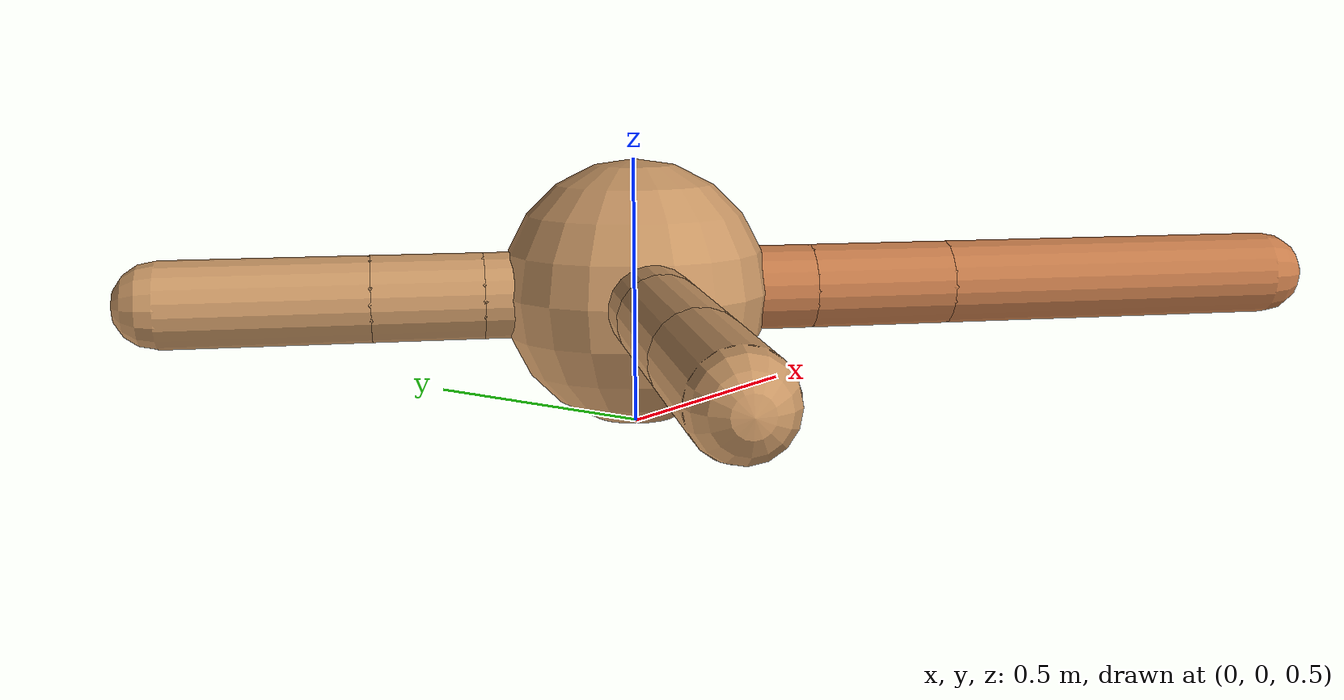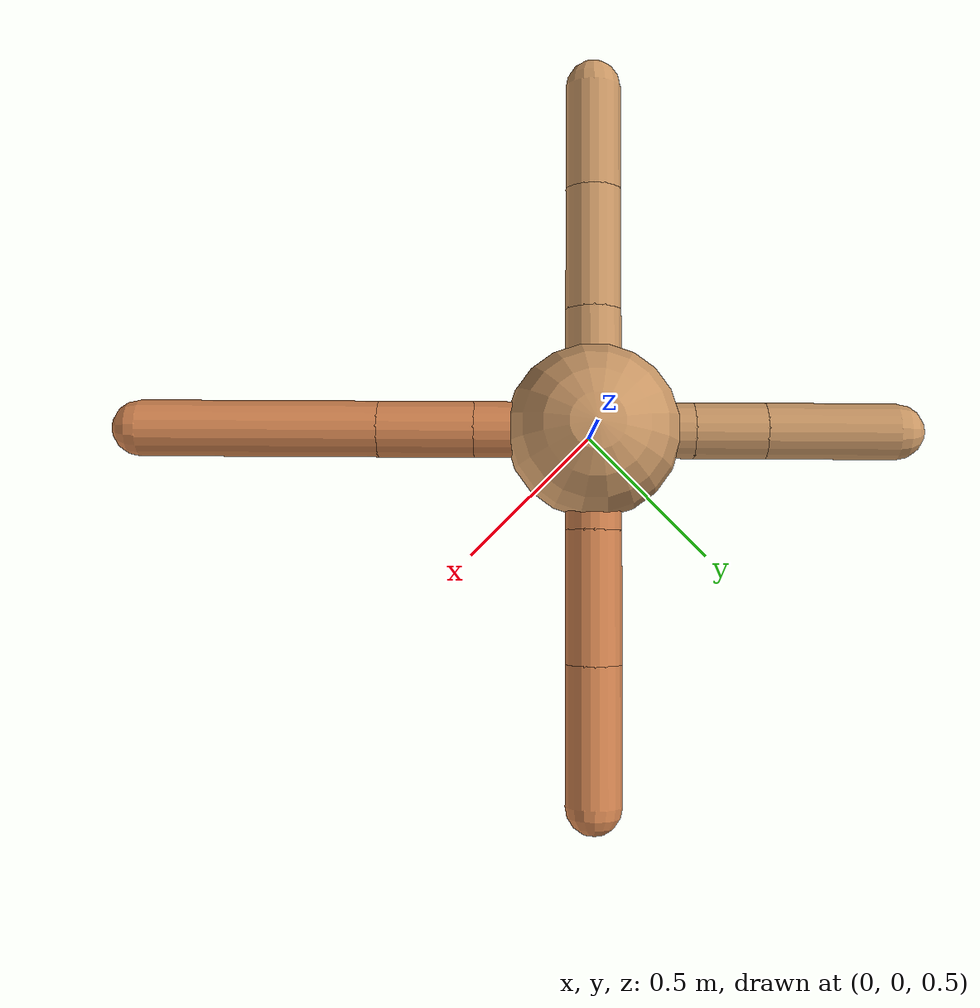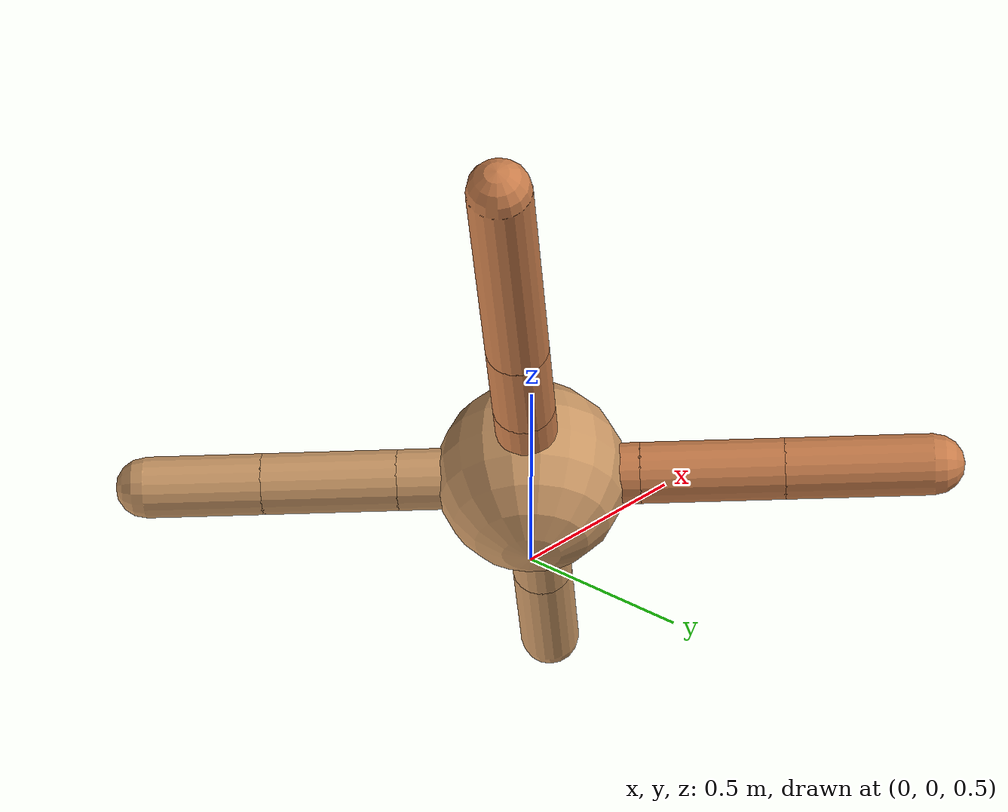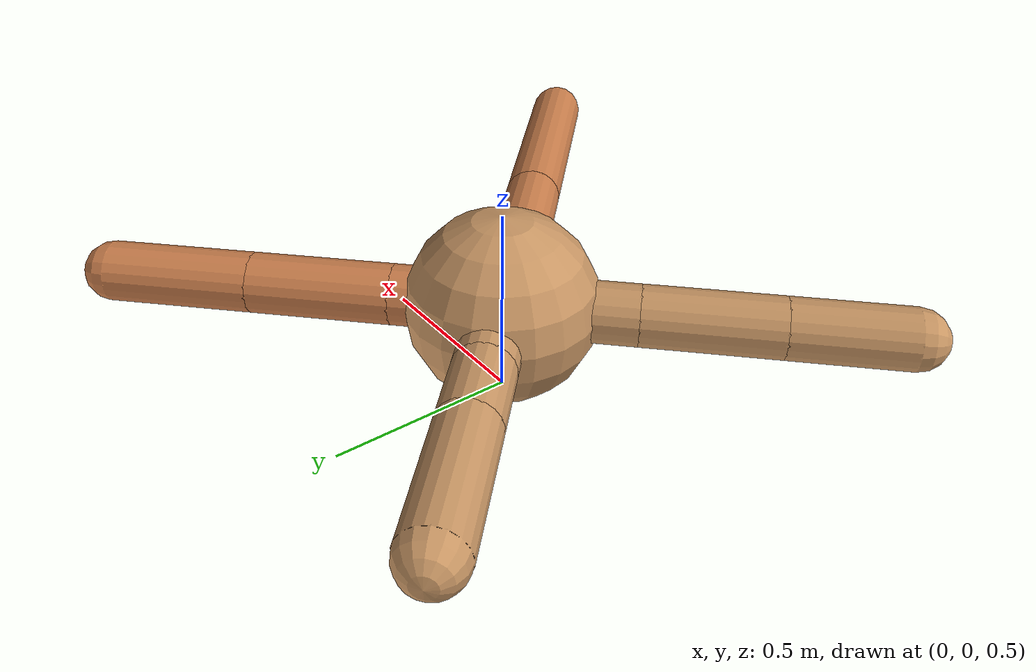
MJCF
<mujoco model="ant">
  <compiler angle="degree" coordinate="local" inertiafromgeom="true" />
  <option integrator="RK4" timestep="0.01" />
  <custom>
    <numeric data="0.0 0.0 0.55 1.0 0.0 0.0 0.0 0.0 1.0 0.0 -1.0 0.0 -1.0 0.0 1.0" name="init_qpos" />
  </custom>
  <default>
    <joint armature="1" damping="1" limited="true" />
    <geom conaffinity="0" condim="3" density="5.0" friction="1.5 0.1 0.1" margin="0.01" rgba="0.8 0.6 0.4 1" />
  </default>
  <worldbody>
    <body name="torso" pos="0 0 0.75">
      <geom name="torso_geom" pos="0 0 0" size="0.25" type="sphere" />

      <body name="front_left_leg" pos="0 0 0">
        <geom fromto="0.0 0.0 0.0 0.2 0.2 0.0" name="aux_1_geom" size="0.08" type="capsule" rgba=".8 .5 .3 1" />
        <body name="aux_1" pos="0.2 0.2 0.0">
          <joint axis="0 0 1" name="hip_1" pos="0.0 0.0 0.0" range="-40 40" type="hinge" />
          <geom fromto="0.0 0.0 0.0 0.26480186414211193 0.26480186414211193 0.0" name="left_leg_geom" size="0.08" type="capsule" rgba=".8 .5 .3 1" />
          <body pos="0.26480186414211193 0.26480186414211193 0.0" name="front_left_foot">
            <joint axis="-1 1 0" name="ankle_1" pos="0.0 0.0 0.0" range="30 100" type="hinge" />
            <geom fromto="0.0 0.0 0.0 0.2728615516027356 0.2728615516027356 0.0" name="left_ankle_geom" size="0.08" type="capsule" rgba=".8 .5 .3 1" />
          </body>
        </body>
      </body>
      <body name="front_right_leg" pos="0 0 0">
        <geom fromto="0.0 0.0 0.0 -0.2 0.2 0.0" name="aux_2_geom" size="0.08" type="capsule" />
        <body name="aux_2" pos="-0.2 0.2 0.0">
          <joint axis="0 0 1" name="hip_2" pos="0.0 0.0 0.0" range="-40 40" type="hinge" />
          <geom fromto="0.0 0.0 0.0 -0.14338726451768316 0.14338726451768316 0.0" name="right_leg_geom" size="0.08" type="capsule" />
          <body pos="-0.14338726451768316 0.14338726451768316 0.0" name="front_right_foot">
            <joint axis="1 1 0" name="ankle_2" pos="0.0 0.0 0.0" range="-100 -30" type="hinge" />
            <geom fromto="0.0 0.0 0.0 -0.2629113584207485 0.2629113584207485 0.0" name="right_ankle_geom" size="0.08" type="capsule" />
          </body>
        </body>
      </body>
      <body name="left_back_leg" pos="0 0 0">
        <geom fromto="0.0 0.0 0.0 -0.2451729523540867 -0.2451729523540867 0.0" name="aux_3_geom" size="0.08" type="capsule" />
        <body name="aux_3" pos="-0.2451729523540867 -0.2451729523540867 0.0">
          <joint axis="0 0 1" name="hip_3" pos="0.0 0.0 0.0" range="-40 40" type="hinge" />
          <geom fromto="0.0 0.0 0.0 -0.25017381917805814 -0.25017381917805814 0.0" name="back_leg_geom" size="0.08" type="capsule" />
          <body pos="-0.25017381917805814 -0.25017381917805814 0.0" name="left_back_foot">
            <joint axis="-1 1 0" name="ankle_3" pos="0.0 0.0 0.0" range="-100 -30" type="hinge" />
            <geom fromto="0.0 0.0 0.0 -0.21736852445429775 -0.21736852445429775 0.0" name="third_ankle_geom" size="0.08" type="capsule" />
          </body>
        </body>
      </body>
      <body name="right_back_leg" pos="0 0 0">
        <geom fromto="0.0 0.0 0.0 0.23929455676711725 -0.23929455676711725 0.0" name="aux_4_geom" size="0.08" type="capsule" rgba=".8 .5 .3 1" />
        <body name="aux_4" pos="0.23929455676711725 -0.23929455676711725 0.0">
          <joint axis="0 0 1" name="hip_4" pos="0.0 0.0 0.0" range="-40 40" type="hinge" />
          <geom fromto="0.0 0.0 0.0 0.1920244443600013 -0.1920244443600013 0.0" name="rightback_leg_geom" size="0.08" type="capsule" rgba=".8 .5 .3 1" />
          <body pos="0.1920244443600013 -0.1920244443600013 0.0" name="right_back_foot">
            <joint axis="1 1 0" name="ankle_4" pos="0.0 0.0 0.0" range="30 100" type="hinge" />
            <geom fromto="0.0 0.0 0.0 0.47709450111091345 -0.47709450111091345 0.0" name="fourth_ankle_geom" size="0.08" type="capsule" rgba=".8 .5 .3 1" />
          </body>
        </body>
      </body>
    </body>
  </worldbody>
  <actuator>
    <motor ctrllimited="true" ctrlrange="-1.0 1.0" joint="hip_4" gear="150" />
    <motor ctrllimited="true" ctrlrange="-1.0 1.0" joint="ankle_4" gear="150" />
    <motor ctrllimited="true" ctrlrange="-1.0 1.0" joint="hip_1" gear="150" />
    <motor ctrllimited="true" ctrlrange="-1.0 1.0" joint="ankle_1" gear="150" />
    <motor ctrllimited="true" ctrlrange="-1.0 1.0" joint="hip_2" gear="150" />
    <motor ctrllimited="true" ctrlrange="-1.0 1.0" joint="ankle_2" gear="150" />
    <motor ctrllimited="true" ctrlrange="-1.0 1.0" joint="hip_3" gear="150" />
    <motor ctrllimited="true" ctrlrange="-1.0 1.0" joint="ankle_3" gear="150" />
  </actuator>
</mujoco>
